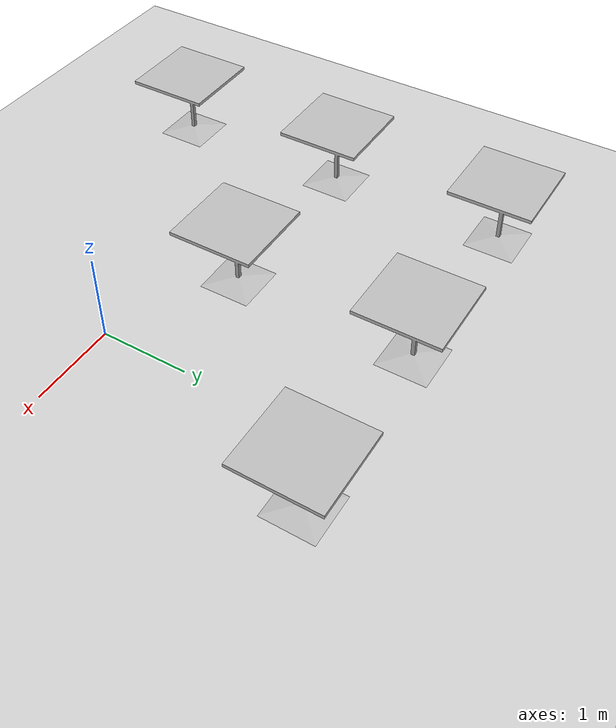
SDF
<sdf version="1.4">
 <world name="default">
  <light name="sun" type="directional">
   <pose>0 0 10 0 -0 0</pose>
   <diffuse>0.8 0.8 0.8 1</diffuse>
   <specular>0.2 0.2 0.2 1</specular>
   <attenuation>
    <range>1000</range>
    <constant>0.9</constant>
    <linear>0.01</linear>
    <quadratic>0.001</quadratic>
   </attenuation>
   <direction>-0.5 0.1 -0.9</direction>
  </light>
  <model name="ground_plane">
   <static>1</static>
   <link name="link">
    <collision name="collision">
     <geometry><plane><normal>0 0 1</normal><size>100 100</size></plane></geometry>
     <surface><friction><ode><mu>100</mu><mu2>50</mu2></ode></friction></surface>
    </collision>
    <visual name="visual">
     <cast_shadows>0</cast_shadows>
     <geometry><plane><normal>0 0 1</normal><size>100 100</size></plane></geometry>
     <material>
      <script><uri>file://media/materials/scripts/gazebo.material</uri><name>Gazebo/Grey</name></script>
     </material>
    </visual>
    <velocity_decay><linear>0</linear><angular>0</angular></velocity_decay>
   </link>
  </model>
  <physics type="ode">
   <max_step_size>0.001</max_step_size>
   <real_time_factor>1</real_time_factor>
   <real_time_update_rate>1000</real_time_update_rate>
   <gravity>0 0 -9.8</gravity>
  </physics>
  <scene><ambient>0.4 0.4 0.4 1</ambient><background>0.7 0.7 0.7 1</background><shadows>1</shadows></scene>
  <spherical_coordinates>
   <surface_model>EARTH_WGS84</surface_model>
   <latitude_deg>0</latitude_deg>
   <longitude_deg>0</longitude_deg>
   <elevation>0</elevation>
   <heading_deg>0</heading_deg>
  </spherical_coordinates>
  <model name="cafe_table">
   <static>1</static>
   <link name="link">
    <collision name="surface">
     <pose>0 0 0.755 0 -0 0</pose>
     <geometry><box><size>0.913 0.913 0.04</size></box></geometry>
    </collision>
    <collision name="column">
     <pose>0 0 0.37 0 -0 0</pose>
     <geometry><box><size>0.042 0.042 0.74</size></box></geometry>
    </collision>
    <collision name="base">
     <pose>0 0 0.02 0 -0 0</pose>
     <geometry><box><size>0.56 0.56 0.04</size></box></geometry>
    </collision>
    <visual name="visual">
     <geometry><mesh><uri>model://cafe_table/meshes/cafe_table.dae</uri></mesh></geometry>
    </visual>
    <velocity_decay><linear>0</linear><angular>0</angular></velocity_decay>
   </link>
   <pose>1 3 0.44167 0 -0 0</pose>
  </model>
  <model name="cafe_table_0">
   <static>1</static>
   <link name="link">
    <collision name="surface">
     <pose>0 0 0.755 0 -0 0</pose>
     <geometry><box><size>0.913 0.913 0.04</size></box></geometry>
    </collision>
    <collision name="column">
     <pose>0 0 0.37 0 -0 0</pose>
     <geometry><box><size>0.042 0.042 0.74</size></box></geometry>
    </collision>
    <collision name="base">
     <pose>0 0 0.02 0 -0 0</pose>
     <geometry><box><size>0.56 0.56 0.04</size></box></geometry>
    </collision>
    <visual name="visual">
     <geometry><mesh><uri>model://cafe_table/meshes/cafe_table.dae</uri></mesh></geometry>
    </visual>
    <velocity_decay><linear>0</linear><angular>0</angular></velocity_decay>
   </link>
   <pose>-1 3 0.405338 0 -0 0</pose>
  </model>
  <model name="cafe_table_1">
   <static>1</static>
   <link name="link">
    <collision name="surface">
     <pose>0 0 0.755 0 -0 0</pose>
     <geometry><box><size>0.913 0.913 0.04</size></box></geometry>
    </collision>
    <collision name="column">
     <pose>0 0 0.37 0 -0 0</pose>
     <geometry><box><size>0.042 0.042 0.74</size></box></geometry>
    </collision>
    <collision name="base">
     <pose>0 0 0.02 0 -0 0</pose>
     <geometry><box><size>0.56 0.56 0.04</size></box></geometry>
    </collision>
    <visual name="visual">
     <geometry><mesh><uri>model://cafe_table/meshes/cafe_table.dae</uri></mesh></geometry>
    </visual>
    <velocity_decay><linear>0</linear><angular>0</angular></velocity_decay>
   </link>
   <pose>-3 3 0.416136 0 -0 0</pose>
  </model>
  <model name="cafe_table_2">
   <static>1</static>
   <link name="link">
    <collision name="surface">
     <pose>0 0 0.755 0 -0 0</pose>
     <geometry><box><size>0.913 0.913 0.04</size></box></geometry>
    </collision>
    <collision name="column">
     <pose>0 0 0.37 0 -0 0</pose>
     <geometry><box><size>0.042 0.042 0.74</size></box></geometry>
    </collision>
    <collision name="base">
     <pose>0 0 0.02 0 -0 0</pose>
     <geometry><box><size>0.56 0.56 0.04</size></box></geometry>
    </collision>
    <visual name="visual">
     <geometry><mesh><uri>model://cafe_table/meshes/cafe_table.dae</uri></mesh></geometry>
    </visual>
    <velocity_decay><linear>0</linear><angular>0</angular></velocity_decay>
   </link>
   <pose>-1 1 0.444871 0 -0 0</pose>
  </model>
  <model name="cafe_table_3">
   <static>1</static>
   <link name="link">
    <collision name="surface">
     <pose>0 0 0.755 0 -0 0</pose>
     <geometry><box><size>0.913 0.913 0.04</size></box></geometry>
    </collision>
    <collision name="column">
     <pose>0 0 0.37 0 -0 0</pose>
     <geometry><box><size>0.042 0.042 0.74</size></box></geometry>
    </collision>
    <collision name="base">
     <pose>0 0 0.02 0 -0 0</pose>
     <geometry><box><size>0.56 0.56 0.04</size></box></geometry>
    </collision>
    <visual name="visual">
     <geometry><mesh><uri>model://cafe_table/meshes/cafe_table.dae</uri></mesh></geometry>
    </visual>
    <velocity_decay><linear>0</linear><angular>0</angular></velocity_decay>
   </link>
   <pose>-3 1 0.414872 0 -0 0</pose>
  </model>
  <model name="cafe_table_4">
   <static>1</static>
   <link name="link">
    <collision name="surface">
     <pose>0 0 0.755 0 -0 0</pose>
     <geometry><box><size>0.913 0.913 0.04</size></box></geometry>
    </collision>
    <collision name="column">
     <pose>0 0 0.37 0 -0 0</pose>
     <geometry><box><size>0.042 0.042 0.74</size></box></geometry>
    </collision>
    <collision name="base">
     <pose>0 0 0.02 0 -0 0</pose>
     <geometry><box><size>0.56 0.56 0.04</size></box></geometry>
    </collision>
    <visual name="visual">
     <geometry><mesh><uri>model://cafe_table/meshes/cafe_table.dae</uri></mesh></geometry>
    </visual>
    <velocity_decay><linear>0</linear><angular>0</angular></velocity_decay>
   </link>
   <pose>-3 -1 0.413486 0 -0 0</pose>
  </model>
 </world>
</sdf>
